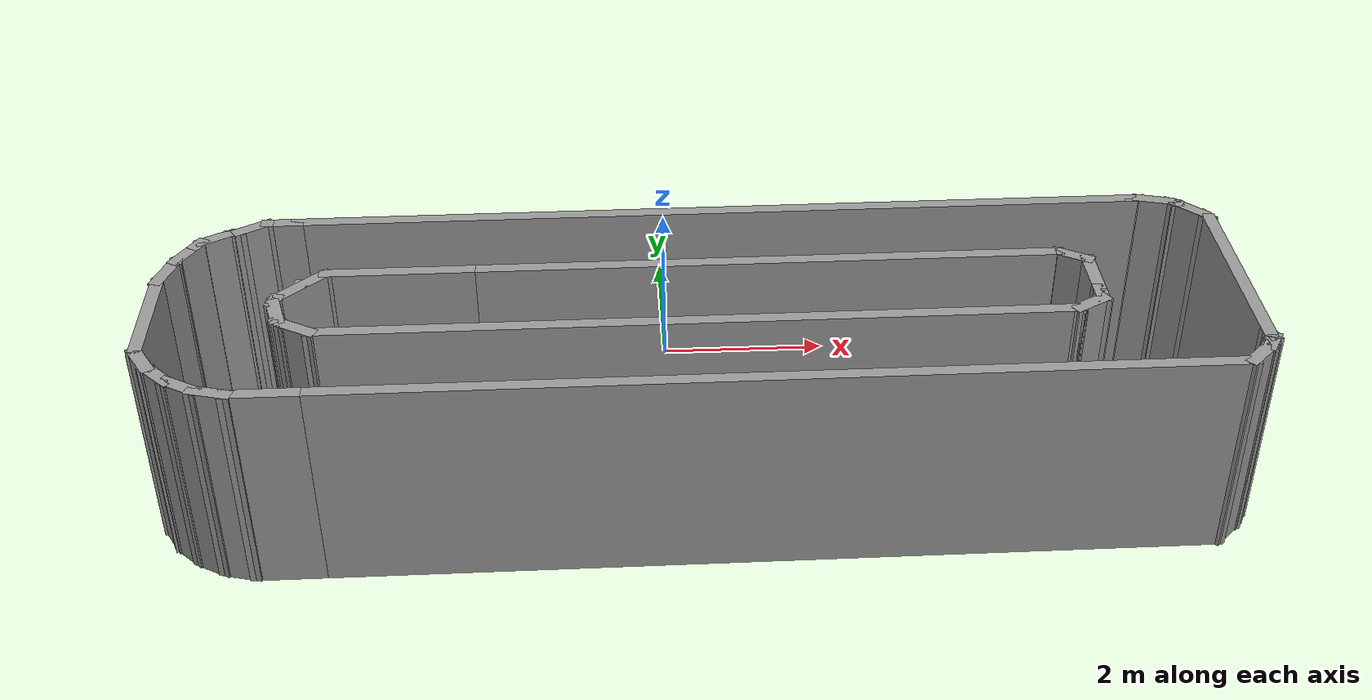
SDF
<?xml version='1.0'?>
<sdf version='1.7'>
  <model name='oval_track'>
    <pose>0.345579 -2.06112 0 0 -0 0</pose>
    <link name='Wall_0'>
      <collision name='Wall_0_Collision'>
        <geometry>
          <box>
            <size>1.5 0.15 2.5</size>
          </box>
        </geometry>
        <pose>0 0 1.25 0 -0 0</pose>
      </collision>
      <visual name='Wall_0_Visual'>
        <pose>0 0 1.25 0 -0 0</pose>
        <geometry>
          <box>
            <size>1.5 0.15 2.5</size>
          </box>
        </geometry>
        <material>
          <script>
            <uri>file://media/materials/scripts/gazebo.material</uri>
            <name>Gazebo/Grey</name>
          </script>
          <ambient>1 1 1 1</ambient>
        </material>
        <meta>
          <layer>0</layer>
        </meta>
      </visual>
      <pose>-6.05558 -0.463876 0 0 -0 -1.5708</pose>
    </link>
    <link name='Wall_10'>
      <collision name='Wall_10_Collision'>
        <geometry>
          <box>
            <size>0.5 0.15 2.5</size>
          </box>
        </geometry>
        <pose>0 0 1.25 0 -0 0</pose>
      </collision>
      <visual name='Wall_10_Visual'>
        <pose>0 0 1.25 0 -0 0</pose>
        <geometry>
          <box>
            <size>0.5 0.15 2.5</size>
          </box>
        </geometry>
        <material>
          <script>
            <uri>file://media/materials/scripts/gazebo.material</uri>
            <name>Gazebo/Grey</name>
          </script>
          <ambient>1 1 1 1</ambient>
        </material>
        <meta>
          <layer>0</layer>
        </meta>
      </visual>
      <pose>5.83183 -1.83132 0 0 -0 0.785398</pose>
    </link>
    <link name='Wall_11'>
      <collision name='Wall_11_Collision'>
        <geometry>
          <box>
            <size>0.15 0.15 2.5</size>
          </box>
        </geometry>
        <pose>0 0 1.25 0 -0 0</pose>
      </collision>
      <visual name='Wall_11_Visual'>
        <pose>0 0 1.25 0 -0 0</pose>
        <geometry>
          <box>
            <size>0.15 0.15 2.5</size>
          </box>
        </geometry>
        <material>
          <script>
            <uri>file://media/materials/scripts/gazebo.material</uri>
            <name>Gazebo/Grey</name>
          </script>
          <ambient>1 1 1 1</ambient>
        </material>
        <meta>
          <layer>0</layer>
        </meta>
      </visual>
      <pose>5.95558 -1.70757 0 0 -0 0</pose>
    </link>
    <link name='Wall_12'>
      <collision name='Wall_12_Collision'>
        <geometry>
          <box>
            <size>0.25 0.15 2.5</size>
          </box>
        </geometry>
        <pose>0 0 1.25 0 -0 0</pose>
      </collision>
      <visual name='Wall_12_Visual'>
        <pose>0 0 1.25 0 -0 0</pose>
        <geometry>
          <box>
            <size>0.25 0.15 2.5</size>
          </box>
        </geometry>
        <material>
          <script>
            <uri>file://media/materials/scripts/gazebo.material</uri>
            <name>Gazebo/Grey</name>
          </script>
          <ambient>1 1 1 1</ambient>
        </material>
        <meta>
          <layer>0</layer>
        </meta>
      </visual>
      <pose>5.98058 -1.66427 0 0 -0 1.0472</pose>
    </link>
    <link name='Wall_13'>
      <collision name='Wall_13_Collision'>
        <geometry>
          <box>
            <size>0.15 0.15 2.5</size>
          </box>
        </geometry>
        <pose>0 0 1.25 0 -0 0</pose>
      </collision>
      <visual name='Wall_13_Visual'>
        <pose>0 0 1.25 0 -0 0</pose>
        <geometry>
          <box>
            <size>0.15 0.15 2.5</size>
          </box>
        </geometry>
        <material>
          <script>
            <uri>file://media/materials/scripts/gazebo.material</uri>
            <name>Gazebo/Grey</name>
          </script>
          <ambient>1 1 1 1</ambient>
        </material>
        <meta>
          <layer>0</layer>
        </meta>
      </visual>
      <pose>6.00558 -1.62097 0 0 -0 0</pose>
    </link>
    <link name='Wall_14'>
      <collision name='Wall_14_Collision'>
        <geometry>
          <box>
            <size>0.25 0.15 2.5</size>
          </box>
        </geometry>
        <pose>0 0 1.25 0 -0 0</pose>
      </collision>
      <visual name='Wall_14_Visual'>
        <pose>0 0 1.25 0 -0 0</pose>
        <geometry>
          <box>
            <size>0.25 0.15 2.5</size>
          </box>
        </geometry>
        <material>
          <script>
            <uri>file://media/materials/scripts/gazebo.material</uri>
            <name>Gazebo/Grey</name>
          </script>
          <ambient>1 1 1 1</ambient>
        </material>
        <meta>
          <layer>0</layer>
        </meta>
      </visual>
      <pose>6.03058 -1.57767 0 0 -0 1.0472</pose>
    </link>
    <link name='Wall_15'>
      <collision name='Wall_15_Collision'>
        <geometry>
          <box>
            <size>0.25 0.15 2.5</size>
          </box>
        </geometry>
        <pose>0 0 1.25 0 -0 0</pose>
      </collision>
      <visual name='Wall_15_Visual'>
        <pose>0 0 1.25 0 -0 0</pose>
        <geometry>
          <box>
            <size>0.25 0.15 2.5</size>
          </box>
        </geometry>
        <material>
          <script>
            <uri>file://media/materials/scripts/gazebo.material</uri>
            <name>Gazebo/Grey</name>
          </script>
          <ambient>1 1 1 1</ambient>
        </material>
        <meta>
          <layer>0</layer>
        </meta>
      </visual>
      <pose>6.04264 -1.48607 0 0 -0 1.8326</pose>
    </link>
    <link name='Wall_16'>
      <collision name='Wall_16_Collision'>
        <geometry>
          <box>
            <size>2.5 0.15 2.5</size>
          </box>
        </geometry>
        <pose>0 0 1.25 0 -0 0</pose>
      </collision>
      <visual name='Wall_16_Visual'>
        <pose>0 0 1.25 0 -0 0</pose>
        <geometry>
          <box>
            <size>2.5 0.15 2.5</size>
          </box>
        </geometry>
        <material>
          <script>
            <uri>file://media/materials/scripts/gazebo.material</uri>
            <name>Gazebo/Grey</name>
          </script>
          <ambient>1 1 1 1</ambient>
        </material>
        <meta>
          <layer>0</layer>
        </meta>
      </visual>
      <pose>6.0297 -0.262774 0 0 -0 1.5708</pose>
    </link>
    <link name='Wall_17'>
      <collision name='Wall_17_Collision'>
        <geometry>
          <box>
            <size>0.25 0.15 2.5</size>
          </box>
        </geometry>
        <pose>0 0 1.25 0 -0 0</pose>
      </collision>
      <visual name='Wall_17_Visual'>
        <pose>0 0 1.25 0 -0 0</pose>
        <geometry>
          <box>
            <size>0.25 0.15 2.5</size>
          </box>
        </geometry>
        <material>
          <script>
            <uri>file://media/materials/scripts/gazebo.material</uri>
            <name>Gazebo/Grey</name>
          </script>
          <ambient>1 1 1 1</ambient>
        </material>
        <meta>
          <layer>0</layer>
        </meta>
      </visual>
      <pose>6.0047 0.955528 0 0 -0 2.0944</pose>
    </link>
    <link name='Wall_18'>
      <collision name='Wall_18_Collision'>
        <geometry>
          <box>
            <size>0.5 0.15 2.5</size>
          </box>
        </geometry>
        <pose>0 0 1.25 0 -0 0</pose>
      </collision>
      <visual name='Wall_18_Visual'>
        <pose>0 0 1.25 0 -0 0</pose>
        <geometry>
          <box>
            <size>0.5 0.15 2.5</size>
          </box>
        </geometry>
        <material>
          <script>
            <uri>file://media/materials/scripts/gazebo.material</uri>
            <name>Gazebo/Grey</name>
          </script>
          <ambient>1 1 1 1</ambient>
        </material>
        <meta>
          <layer>0</layer>
        </meta>
      </visual>
      <pose>5.85595 1.12257 0 0 -0 2.35619</pose>
    </link>
    <link name='Wall_19'>
      <collision name='Wall_19_Collision'>
        <geometry>
          <box>
            <size>0.15 0.15 2.5</size>
          </box>
        </geometry>
        <pose>0 0 1.25 0 -0 0</pose>
      </collision>
      <visual name='Wall_19_Visual'>
        <pose>0 0 1.25 0 -0 0</pose>
        <geometry>
          <box>
            <size>0.15 0.15 2.5</size>
          </box>
        </geometry>
        <material>
          <script>
            <uri>file://media/materials/scripts/gazebo.material</uri>
            <name>Gazebo/Grey</name>
          </script>
          <ambient>1 1 1 1</ambient>
        </material>
        <meta>
          <layer>0</layer>
        </meta>
      </visual>
      <pose>5.73221 1.24632 0 0 -0 0</pose>
    </link>
    <link name='Wall_20'>
      <collision name='Wall_20_Collision'>
        <geometry>
          <box>
            <size>0.25 0.15 2.5</size>
          </box>
        </geometry>
        <pose>0 0 1.25 0 -0 0</pose>
      </collision>
      <visual name='Wall_20_Visual'>
        <pose>0 0 1.25 0 -0 0</pose>
        <geometry>
          <box>
            <size>0.25 0.15 2.5</size>
          </box>
        </geometry>
        <material>
          <script>
            <uri>file://media/materials/scripts/gazebo.material</uri>
            <name>Gazebo/Grey</name>
          </script>
          <ambient>1 1 1 1</ambient>
        </material>
        <meta>
          <layer>0</layer>
        </meta>
      </visual>
      <pose>5.68891 1.27132 0 0 -0 2.61799</pose>
    </link>
    <link name='Wall_21'>
      <collision name='Wall_21_Collision'>
        <geometry>
          <box>
            <size>0.5 0.15 2.5</size>
          </box>
        </geometry>
        <pose>0 0 1.25 0 -0 0</pose>
      </collision>
      <visual name='Wall_21_Visual'>
        <pose>0 0 1.25 0 -0 0</pose>
        <geometry>
          <box>
            <size>0.5 0.15 2.5</size>
          </box>
        </geometry>
        <material>
          <script>
            <uri>file://media/materials/scripts/gazebo.material</uri>
            <name>Gazebo/Grey</name>
          </script>
          <ambient>1 1 1 1</ambient>
        </material>
        <meta>
          <layer>0</layer>
        </meta>
      </visual>
      <pose>5.47657 1.34161 0 0 -0 2.87979</pose>
    </link>
    <link name='Wall_22'>
      <collision name='Wall_22_Collision'>
        <geometry>
          <box>
            <size>0.25 0.15 2.5</size>
          </box>
        </geometry>
        <pose>0 0 1.25 0 -0 0</pose>
      </collision>
      <visual name='Wall_22_Visual'>
        <pose>0 0 1.25 0 -0 0</pose>
        <geometry>
          <box>
            <size>0.25 0.15 2.5</size>
          </box>
        </geometry>
        <material>
          <script>
            <uri>file://media/materials/scripts/gazebo.material</uri>
            <name>Gazebo/Grey</name>
          </script>
          <ambient>1 1 1 1</ambient>
        </material>
        <meta>
          <layer>0</layer>
        </meta>
      </visual>
      <pose>5.25753 1.3869 0 0 -0 3.14159</pose>
    </link>
    <link name='Wall_23'>
      <collision name='Wall_23_Collision'>
        <geometry>
          <box>
            <size>10 0.15 2.5</size>
          </box>
        </geometry>
        <pose>0 0 1.25 0 -0 0</pose>
      </collision>
      <visual name='Wall_23_Visual'>
        <pose>0 0 1.25 0 -0 0</pose>
        <geometry>
          <box>
            <size>10 0.15 2.5</size>
          </box>
        </geometry>
        <material>
          <script>
            <uri>file://media/materials/scripts/gazebo.material</uri>
            <name>Gazebo/Grey</name>
          </script>
          <ambient>1 1 1 1</ambient>
        </material>
        <meta>
          <layer>0</layer>
        </meta>
      </visual>
      <pose>0.282533 1.3869 0 0 -0 3.14159</pose>
    </link>
    <link name='Wall_24'>
      <collision name='Wall_24_Collision'>
        <geometry>
          <box>
            <size>0.5 0.15 2.5</size>
          </box>
        </geometry>
        <pose>0 0 1.25 0 -0 0</pose>
      </collision>
      <visual name='Wall_24_Visual'>
        <pose>0 0 1.25 0 -0 0</pose>
        <geometry>
          <box>
            <size>0.5 0.15 2.5</size>
          </box>
        </geometry>
        <material>
          <script>
            <uri>file://media/materials/scripts/gazebo.material</uri>
            <name>Gazebo/Grey</name>
          </script>
          <ambient>1 1 1 1</ambient>
        </material>
        <meta>
          <layer>0</layer>
        </meta>
      </visual>
      <pose>-4.81747 1.3869 0 0 -0 3.14159</pose>
    </link>
    <link name='Wall_25'>
      <collision name='Wall_25_Collision'>
        <geometry>
          <box>
            <size>0.15 0.15 2.5</size>
          </box>
        </geometry>
        <pose>0 0 1.25 0 -0 0</pose>
      </collision>
      <visual name='Wall_25_Visual'>
        <pose>0 0 1.25 0 -0 0</pose>
        <geometry>
          <box>
            <size>0.15 0.15 2.5</size>
          </box>
        </geometry>
        <material>
          <script>
            <uri>file://media/materials/scripts/gazebo.material</uri>
            <name>Gazebo/Grey</name>
          </script>
          <ambient>1 1 1 1</ambient>
        </material>
        <meta>
          <layer>0</layer>
        </meta>
      </visual>
      <pose>-4.99247 1.3869 0 0 -0 0</pose>
    </link>
    <link name='Wall_26'>
      <collision name='Wall_26_Collision'>
        <geometry>
          <box>
            <size>0.5 0.15 2.5</size>
          </box>
        </geometry>
        <pose>0 0 1.25 0 -0 0</pose>
      </collision>
      <visual name='Wall_26_Visual'>
        <pose>0 0 1.25 0 -0 0</pose>
        <geometry>
          <box>
            <size>0.5 0.15 2.5</size>
          </box>
        </geometry>
        <material>
          <script>
            <uri>file://media/materials/scripts/gazebo.material</uri>
            <name>Gazebo/Grey</name>
          </script>
          <ambient>1 1 1 1</ambient>
        </material>
        <meta>
          <layer>0</layer>
        </meta>
      </visual>
      <pose>-5.14402 1.2994 0 0 -0 -2.61799</pose>
    </link>
    <link name='Wall_27'>
      <collision name='Wall_27_Collision'>
        <geometry>
          <box>
            <size>0.25 0.15 2.5</size>
          </box>
        </geometry>
        <pose>0 0 1.25 0 -0 0</pose>
      </collision>
      <visual name='Wall_27_Visual'>
        <pose>0 0 1.25 0 -0 0</pose>
        <geometry>
          <box>
            <size>0.25 0.15 2.5</size>
          </box>
        </geometry>
        <material>
          <script>
            <uri>file://media/materials/scripts/gazebo.material</uri>
            <name>Gazebo/Grey</name>
          </script>
          <ambient>1 1 1 1</ambient>
        </material>
        <meta>
          <layer>0</layer>
        </meta>
      </visual>
      <pose>-5.34387 1.19896 0 0 -0 -2.87979</pose>
    </link>
    <link name='Wall_28'>
      <collision name='Wall_28_Collision'>
        <geometry>
          <box>
            <size>0.5 0.15 2.5</size>
          </box>
        </geometry>
        <pose>0 0 1.25 0 -0 0</pose>
      </collision>
      <visual name='Wall_28_Visual'>
        <pose>0 0 1.25 0 -0 0</pose>
        <geometry>
          <box>
            <size>0.5 0.15 2.5</size>
          </box>
        </geometry>
        <material>
          <script>
            <uri>file://media/materials/scripts/gazebo.material</uri>
            <name>Gazebo/Grey</name>
          </script>
          <ambient>1 1 1 1</ambient>
        </material>
        <meta>
          <layer>0</layer>
        </meta>
      </visual>
      <pose>-5.54372 1.09852 0 0 -0 -2.61799</pose>
    </link>
    <link name='Wall_29'>
      <collision name='Wall_29_Collision'>
        <geometry>
          <box>
            <size>0.25 0.15 2.5</size>
          </box>
        </geometry>
        <pose>0 0 1.25 0 -0 0</pose>
      </collision>
      <visual name='Wall_29_Visual'>
        <pose>0 0 1.25 0 -0 0</pose>
        <geometry>
          <box>
            <size>0.25 0.15 2.5</size>
          </box>
        </geometry>
        <material>
          <script>
            <uri>file://media/materials/scripts/gazebo.material</uri>
            <name>Gazebo/Grey</name>
          </script>
          <ambient>1 1 1 1</ambient>
        </material>
        <meta>
          <layer>0</layer>
        </meta>
      </visual>
      <pose>-5.72028 0.96772 0 0 -0 -2.0944</pose>
    </link>
    <link name='Wall_3'>
      <collision name='Wall_3_Collision'>
        <geometry>
          <box>
            <size>0.5 0.15 2.5</size>
          </box>
        </geometry>
        <pose>0 0 1.25 0 -0 0</pose>
      </collision>
      <visual name='Wall_3_Visual'>
        <pose>0 0 1.25 0 -0 0</pose>
        <geometry>
          <box>
            <size>0.5 0.15 2.5</size>
          </box>
        </geometry>
        <material>
          <script>
            <uri>file://media/materials/scripts/gazebo.material</uri>
            <name>Gazebo/Grey</name>
          </script>
          <ambient>1 1 1 1</ambient>
        </material>
        <meta>
          <layer>0</layer>
        </meta>
      </visual>
      <pose>-5.96808 -1.29043 0 0 -0 -1.0472</pose>
    </link>
    <link name='Wall_30'>
      <collision name='Wall_30_Collision'>
        <geometry>
          <box>
            <size>0.5 0.15 2.5</size>
          </box>
        </geometry>
        <pose>0 0 1.25 0 -0 0</pose>
      </collision>
      <visual name='Wall_30_Visual'>
        <pose>0 0 1.25 0 -0 0</pose>
        <geometry>
          <box>
            <size>0.5 0.15 2.5</size>
          </box>
        </geometry>
        <material>
          <script>
            <uri>file://media/materials/scripts/gazebo.material</uri>
            <name>Gazebo/Grey</name>
          </script>
          <ambient>1 1 1 1</ambient>
        </material>
        <meta>
          <layer>0</layer>
        </meta>
      </visual>
      <pose>-5.83278 0.772864 0 0 -0 -2.0944</pose>
    </link>
    <link name='Wall_31'>
      <collision name='Wall_31_Collision'>
        <geometry>
          <box>
            <size>0.15 0.15 2.5</size>
          </box>
        </geometry>
        <pose>0 0 1.25 0 -0 0</pose>
      </collision>
      <visual name='Wall_31_Visual'>
        <pose>0 0 1.25 0 -0 0</pose>
        <geometry>
          <box>
            <size>0.15 0.15 2.5</size>
          </box>
        </geometry>
        <material>
          <script>
            <uri>file://media/materials/scripts/gazebo.material</uri>
            <name>Gazebo/Grey</name>
          </script>
          <ambient>1 1 1 1</ambient>
        </material>
        <meta>
          <layer>0</layer>
        </meta>
      </visual>
      <pose>-5.92028 0.62131 0 0 -0 0</pose>
    </link>
    <link name='Wall_32'>
      <collision name='Wall_32_Collision'>
        <geometry>
          <box>
            <size>0.581924 0.15 2.5</size>
          </box>
        </geometry>
        <pose>0 0 1.25 0 -0 0</pose>
      </collision>
      <visual name='Wall_32_Visual'>
        <pose>0 0 1.25 0 -0 0</pose>
        <geometry>
          <box>
            <size>0.581924 0.15 2.5</size>
          </box>
        </geometry>
        <material>
          <script>
            <uri>file://media/materials/scripts/gazebo.material</uri>
            <name>Gazebo/Grey</name>
          </script>
          <ambient>1 1 1 1</ambient>
        </material>
        <meta>
          <layer>0</layer>
        </meta>
      </visual>
      <pose>-5.98793 0.416217 0 0 -0 -1.88941</pose>
    </link>
    <link name='Wall_35'>
      <collision name='Wall_35_Collision'>
        <geometry>
          <box>
            <size>0.15 0.15 2.5</size>
          </box>
        </geometry>
        <pose>0 0 1.25 0 -0 0</pose>
      </collision>
      <visual name='Wall_35_Visual'>
        <pose>0 0 1.25 0 -0 0</pose>
        <geometry>
          <box>
            <size>0.15 0.15 2.5</size>
          </box>
        </geometry>
        <material>
          <script>
            <uri>file://media/materials/scripts/gazebo.material</uri>
            <name>Gazebo/Grey</name>
          </script>
          <ambient>1 1 1 1</ambient>
        </material>
        <meta>
          <layer>0</layer>
        </meta>
      </visual>
      <pose>-4.44558 0.081124 0 0 -0 0</pose>
    </link>
    <link name='Wall_4'>
      <collision name='Wall_4_Collision'>
        <geometry>
          <box>
            <size>0.15 0.15 2.5</size>
          </box>
        </geometry>
        <pose>0 0 1.25 0 -0 0</pose>
      </collision>
      <visual name='Wall_4_Visual'>
        <pose>0 0 1.25 0 -0 0</pose>
        <geometry>
          <box>
            <size>0.15 0.15 2.5</size>
          </box>
        </geometry>
        <material>
          <script>
            <uri>file://media/materials/scripts/gazebo.material</uri>
            <name>Gazebo/Grey</name>
          </script>
          <ambient>1 1 1 1</ambient>
        </material>
        <meta>
          <layer>0</layer>
        </meta>
      </visual>
      <pose>-5.88058 -1.44199 0 0 -0 0</pose>
    </link>
    <link name='Wall_40'>
      <collision name='Wall_40_Collision'>
        <geometry>
          <box>
            <size>0.25 0.15 2.5</size>
          </box>
        </geometry>
        <pose>0 0 1.25 0 -0 0</pose>
      </collision>
      <visual name='Wall_40_Visual'>
        <pose>0 0 1.25 0 -0 0</pose>
        <geometry>
          <box>
            <size>0.25 0.15 2.5</size>
          </box>
        </geometry>
        <material>
          <script>
            <uri>file://media/materials/scripts/gazebo.material</uri>
            <name>Gazebo/Grey</name>
          </script>
          <ambient>1 1 1 1</ambient>
        </material>
        <meta>
          <layer>0</layer>
        </meta>
      </visual>
      <pose>-4.7017 -0.24696 0 0 -0 -1.8326</pose>
    </link>
    <link name='Wall_41'>
      <collision name='Wall_41_Collision'>
        <geometry>
          <box>
            <size>0.5 0.15 2.5</size>
          </box>
        </geometry>
        <pose>0 0 1.25 0 -0 0</pose>
      </collision>
      <visual name='Wall_41_Visual'>
        <pose>0 0 1.25 0 -0 0</pose>
        <geometry>
          <box>
            <size>0.5 0.15 2.5</size>
          </box>
        </geometry>
        <material>
          <script>
            <uri>file://media/materials/scripts/gazebo.material</uri>
            <name>Gazebo/Grey</name>
          </script>
          <ambient>1 1 1 1</ambient>
        </material>
        <meta>
          <layer>0</layer>
        </meta>
      </visual>
      <pose>-4.66935 -0.464293 0 0 -0 -1.309</pose>
    </link>
    <link name='Wall_42'>
      <collision name='Wall_42_Collision'>
        <geometry>
          <box>
            <size>0.15 0.15 2.5</size>
          </box>
        </geometry>
        <pose>0 0 1.25 0 -0 0</pose>
      </collision>
      <visual name='Wall_42_Visual'>
        <pose>0 0 1.25 0 -0 0</pose>
        <geometry>
          <box>
            <size>0.15 0.15 2.5</size>
          </box>
        </geometry>
        <material>
          <script>
            <uri>file://media/materials/scripts/gazebo.material</uri>
            <name>Gazebo/Grey</name>
          </script>
          <ambient>1 1 1 1</ambient>
        </material>
        <meta>
          <layer>0</layer>
        </meta>
      </visual>
      <pose>-4.62406 -0.63333 0 0 -0 0</pose>
    </link>
    <link name='Wall_43'>
      <collision name='Wall_43_Collision'>
        <geometry>
          <box>
            <size>0.15 0.15 2.5</size>
          </box>
        </geometry>
        <pose>0 0 1.25 0 -0 0</pose>
      </collision>
      <visual name='Wall_43_Visual'>
        <pose>0 0 1.25 0 -0 0</pose>
        <geometry>
          <box>
            <size>0.15 0.15 2.5</size>
          </box>
        </geometry>
        <material>
          <script>
            <uri>file://media/materials/scripts/gazebo.material</uri>
            <name>Gazebo/Grey</name>
          </script>
          <ambient>1 1 1 1</ambient>
        </material>
        <meta>
          <layer>0</layer>
        </meta>
      </visual>
      <pose>-4.62406 -0.63333 0 0 -0 0</pose>
    </link>
    <link name='Wall_44'>
      <collision name='Wall_44_Collision'>
        <geometry>
          <box>
            <size>0.25 0.15 2.5</size>
          </box>
        </geometry>
        <pose>0 0 1.25 0 -0 0</pose>
      </collision>
      <visual name='Wall_44_Visual'>
        <pose>0 0 1.25 0 -0 0</pose>
        <geometry>
          <box>
            <size>0.25 0.15 2.5</size>
          </box>
        </geometry>
        <material>
          <script>
            <uri>file://media/materials/scripts/gazebo.material</uri>
            <name>Gazebo/Grey</name>
          </script>
          <ambient>1 1 1 1</ambient>
        </material>
        <meta>
          <layer>0</layer>
        </meta>
      </visual>
      <pose>-4.5887 -0.668685 0 0 -0 -0.785398</pose>
    </link>
    <link name='Wall_45'>
      <collision name='Wall_45_Collision'>
        <geometry>
          <box>
            <size>0.5 0.15 2.5</size>
          </box>
        </geometry>
        <pose>0 0 1.25 0 -0 0</pose>
      </collision>
      <visual name='Wall_45_Visual'>
        <pose>0 0 1.25 0 -0 0</pose>
        <geometry>
          <box>
            <size>0.5 0.15 2.5</size>
          </box>
        </geometry>
        <material>
          <script>
            <uri>file://media/materials/scripts/gazebo.material</uri>
            <name>Gazebo/Grey</name>
          </script>
          <ambient>1 1 1 1</ambient>
        </material>
        <meta>
          <layer>0</layer>
        </meta>
      </visual>
      <pose>-4.40179 -0.791541 0 0 -0 -0.523599</pose>
    </link>
    <link name='Wall_46'>
      <collision name='Wall_46_Collision'>
        <geometry>
          <box>
            <size>8.5 0.15 2.5</size>
          </box>
        </geometry>
        <pose>0 0 1.25 0 -0 0</pose>
      </collision>
      <visual name='Wall_46_Visual'>
        <pose>0 0 1.25 0 -0 0</pose>
        <geometry>
          <box>
            <size>8.5 0.15 2.5</size>
          </box>
        </geometry>
        <material>
          <script>
            <uri>file://media/materials/scripts/gazebo.material</uri>
            <name>Gazebo/Grey</name>
          </script>
          <ambient>1 1 1 1</ambient>
        </material>
        <meta>
          <layer>0</layer>
        </meta>
      </visual>
      <pose>-0.07524 -0.879041 0 0 -0 0</pose>
    </link>
    <link name='Wall_47'>
      <collision name='Wall_47_Collision'>
        <geometry>
          <box>
            <size>0.15 0.15 2.5</size>
          </box>
        </geometry>
        <pose>0 0 1.25 0 -0 0</pose>
      </collision>
      <visual name='Wall_47_Visual'>
        <pose>0 0 1.25 0 -0 0</pose>
        <geometry>
          <box>
            <size>0.15 0.15 2.5</size>
          </box>
        </geometry>
        <material>
          <script>
            <uri>file://media/materials/scripts/gazebo.material</uri>
            <name>Gazebo/Grey</name>
          </script>
          <ambient>1 1 1 1</ambient>
        </material>
        <meta>
          <layer>0</layer>
        </meta>
      </visual>
      <pose>4.09976 -0.879041 0 0 -0 0</pose>
    </link>
    <link name='Wall_48'>
      <collision name='Wall_48_Collision'>
        <geometry>
          <box>
            <size>0.5 0.15 2.5</size>
          </box>
        </geometry>
        <pose>0 0 1.25 0 -0 0</pose>
      </collision>
      <visual name='Wall_48_Visual'>
        <pose>0 0 1.25 0 -0 0</pose>
        <geometry>
          <box>
            <size>0.5 0.15 2.5</size>
          </box>
        </geometry>
        <material>
          <script>
            <uri>file://media/materials/scripts/gazebo.material</uri>
            <name>Gazebo/Grey</name>
          </script>
          <ambient>1 1 1 1</ambient>
        </material>
        <meta>
          <layer>0</layer>
        </meta>
      </visual>
      <pose>4.25131 -0.791541 0 0 -0 0.523599</pose>
    </link>
    <link name='Wall_49'>
      <collision name='Wall_49_Collision'>
        <geometry>
          <box>
            <size>0.15 0.15 2.5</size>
          </box>
        </geometry>
        <pose>0 0 1.25 0 -0 0</pose>
      </collision>
      <visual name='Wall_49_Visual'>
        <pose>0 0 1.25 0 -0 0</pose>
        <geometry>
          <box>
            <size>0.15 0.15 2.5</size>
          </box>
        </geometry>
        <material>
          <script>
            <uri>file://media/materials/scripts/gazebo.material</uri>
            <name>Gazebo/Grey</name>
          </script>
          <ambient>1 1 1 1</ambient>
        </material>
        <meta>
          <layer>0</layer>
        </meta>
      </visual>
      <pose>4.40287 -0.704041 0 0 -0 0</pose>
    </link>
    <link name='Wall_5'>
      <collision name='Wall_5_Collision'>
        <geometry>
          <box>
            <size>0.5 0.15 2.5</size>
          </box>
        </geometry>
        <pose>0 0 1.25 0 -0 0</pose>
      </collision>
      <visual name='Wall_5_Visual'>
        <pose>0 0 1.25 0 -0 0</pose>
        <geometry>
          <box>
            <size>0.5 0.15 2.5</size>
          </box>
        </geometry>
        <material>
          <script>
            <uri>file://media/materials/scripts/gazebo.material</uri>
            <name>Gazebo/Grey</name>
          </script>
          <ambient>1 1 1 1</ambient>
        </material>
        <meta>
          <layer>0</layer>
        </meta>
      </visual>
      <pose>-5.75683 -1.56573 0 0 -0 -0.785398</pose>
    </link>
    <link name='Wall_50'>
      <collision name='Wall_50_Collision'>
        <geometry>
          <box>
            <size>0.25 0.15 2.5</size>
          </box>
        </geometry>
        <pose>0 0 1.25 0 -0 0</pose>
      </collision>
      <visual name='Wall_50_Visual'>
        <pose>0 0 1.25 0 -0 0</pose>
        <geometry>
          <box>
            <size>0.25 0.15 2.5</size>
          </box>
        </geometry>
        <material>
          <script>
            <uri>file://media/materials/scripts/gazebo.material</uri>
            <name>Gazebo/Grey</name>
          </script>
          <ambient>1 1 1 1</ambient>
        </material>
        <meta>
          <layer>0</layer>
        </meta>
      </visual>
      <pose>4.40287 -0.654041 0 0 -0 1.5708</pose>
    </link>
    <link name='Wall_51'>
      <collision name='Wall_51_Collision'>
        <geometry>
          <box>
            <size>0.25 0.15 2.5</size>
          </box>
        </geometry>
        <pose>0 0 1.25 0 -0 0</pose>
      </collision>
      <visual name='Wall_51_Visual'>
        <pose>0 0 1.25 0 -0 0</pose>
        <geometry>
          <box>
            <size>0.25 0.15 2.5</size>
          </box>
        </geometry>
        <material>
          <script>
            <uri>file://media/materials/scripts/gazebo.material</uri>
            <name>Gazebo/Grey</name>
          </script>
          <ambient>1 1 1 1</ambient>
        </material>
        <meta>
          <layer>0</layer>
        </meta>
      </visual>
      <pose>4.40287 -0.554041 0 0 -0 1.5708</pose>
    </link>
    <link name='Wall_52'>
      <collision name='Wall_52_Collision'>
        <geometry>
          <box>
            <size>0.75 0.15 2.5</size>
          </box>
        </geometry>
        <pose>0 0 1.25 0 -0 0</pose>
      </collision>
      <visual name='Wall_52_Visual'>
        <pose>0 0 1.25 0 -0 0</pose>
        <geometry>
          <box>
            <size>0.75 0.15 2.5</size>
          </box>
        </geometry>
        <material>
          <script>
            <uri>file://media/materials/scripts/gazebo.material</uri>
            <name>Gazebo/Grey</name>
          </script>
          <ambient>1 1 1 1</ambient>
        </material>
        <meta>
          <layer>0</layer>
        </meta>
      </visual>
      <pose>4.40287 -0.204041 0 0 -0 1.5708</pose>
    </link>
    <link name='Wall_53'>
      <collision name='Wall_53_Collision'>
        <geometry>
          <box>
            <size>0.15 0.15 2.5</size>
          </box>
        </geometry>
        <pose>0 0 1.25 0 -0 0</pose>
      </collision>
      <visual name='Wall_53_Visual'>
        <pose>0 0 1.25 0 -0 0</pose>
        <geometry>
          <box>
            <size>0.15 0.15 2.5</size>
          </box>
        </geometry>
        <material>
          <script>
            <uri>file://media/materials/scripts/gazebo.material</uri>
            <name>Gazebo/Grey</name>
          </script>
          <ambient>1 1 1 1</ambient>
        </material>
        <meta>
          <layer>0</layer>
        </meta>
      </visual>
      <pose>4.40287 0.095959 0 0 -0 0</pose>
    </link>
    <link name='Wall_54'>
      <collision name='Wall_54_Collision'>
        <geometry>
          <box>
            <size>0.5 0.15 2.5</size>
          </box>
        </geometry>
        <pose>0 0 1.25 0 -0 0</pose>
      </collision>
      <visual name='Wall_54_Visual'>
        <pose>0 0 1.25 0 -0 0</pose>
        <geometry>
          <box>
            <size>0.5 0.15 2.5</size>
          </box>
        </geometry>
        <material>
          <script>
            <uri>file://media/materials/scripts/gazebo.material</uri>
            <name>Gazebo/Grey</name>
          </script>
          <ambient>1 1 1 1</ambient>
        </material>
        <meta>
          <layer>0</layer>
        </meta>
      </visual>
      <pose>4.25131 0.183459 0 0 -0 2.61799</pose>
    </link>
    <link name='Wall_55'>
      <collision name='Wall_55_Collision'>
        <geometry>
          <box>
            <size>0.25 0.15 2.5</size>
          </box>
        </geometry>
        <pose>0 0 1.25 0 -0 0</pose>
      </collision>
      <visual name='Wall_55_Visual'>
        <pose>0 0 1.25 0 -0 0</pose>
        <geometry>
          <box>
            <size>0.25 0.15 2.5</size>
          </box>
        </geometry>
        <material>
          <script>
            <uri>file://media/materials/scripts/gazebo.material</uri>
            <name>Gazebo/Grey</name>
          </script>
          <ambient>1 1 1 1</ambient>
        </material>
        <meta>
          <layer>0</layer>
        </meta>
      </visual>
      <pose>4.04976 0.270959 0 0 -0 3.14159</pose>
    </link>
    <link name='Wall_56'>
      <collision name='Wall_56_Collision'>
        <geometry>
          <box>
            <size>6.75 0.15 2.5</size>
          </box>
        </geometry>
        <pose>0 0 1.25 0 -0 0</pose>
      </collision>
      <visual name='Wall_56_Visual'>
        <pose>0 0 1.25 0 -0 0</pose>
        <geometry>
          <box>
            <size>6.75 0.15 2.5</size>
          </box>
        </geometry>
        <material>
          <script>
            <uri>file://media/materials/scripts/gazebo.material</uri>
            <name>Gazebo/Grey</name>
          </script>
          <ambient>1 1 1 1</ambient>
        </material>
        <meta>
          <layer>0</layer>
        </meta>
      </visual>
      <pose>0.69976 0.270959 0 0 -0 3.14159</pose>
    </link>
    <link name='Wall_58'>
      <collision name='Wall_58_Collision'>
        <geometry>
          <box>
            <size>1.75 0.15 2.5</size>
          </box>
        </geometry>
        <pose>0 0 1.25 0 -0 0</pose>
      </collision>
      <visual name='Wall_58_Visual'>
        <pose>0 0 1.25 0 -0 0</pose>
        <geometry>
          <box>
            <size>1.75 0.15 2.5</size>
          </box>
        </geometry>
        <material>
          <script>
            <uri>file://media/materials/scripts/gazebo.material</uri>
            <name>Gazebo/Grey</name>
          </script>
          <ambient>1 1 1 1</ambient>
        </material>
        <meta>
          <layer>0</layer>
        </meta>
      </visual>
      <pose>-3.40024 0.270959 0 0 -0 3.14159</pose>
    </link>
    <link name='Wall_59'>
      <collision name='Wall_59_Collision'>
        <geometry>
          <box>
            <size>0.15 0.15 2.5</size>
          </box>
        </geometry>
        <pose>0 0 1.25 0 -0 0</pose>
      </collision>
      <visual name='Wall_59_Visual'>
        <pose>0 0 1.25 0 -0 0</pose>
        <geometry>
          <box>
            <size>0.15 0.15 2.5</size>
          </box>
        </geometry>
        <material>
          <script>
            <uri>file://media/materials/scripts/gazebo.material</uri>
            <name>Gazebo/Grey</name>
          </script>
          <ambient>1 1 1 1</ambient>
        </material>
        <meta>
          <layer>0</layer>
        </meta>
      </visual>
      <pose>-4.20024 0.270959 0 0 -0 0</pose>
    </link>
    <link name='Wall_6'>
      <collision name='Wall_6_Collision'>
        <geometry>
          <box>
            <size>0.5 0.15 2.5</size>
          </box>
        </geometry>
        <pose>0 0 1.25 0 -0 0</pose>
      </collision>
      <visual name='Wall_6_Visual'>
        <pose>0 0 1.25 0 -0 0</pose>
        <geometry>
          <box>
            <size>0.5 0.15 2.5</size>
          </box>
        </geometry>
        <material>
          <script>
            <uri>file://media/materials/scripts/gazebo.material</uri>
            <name>Gazebo/Grey</name>
          </script>
          <ambient>1 1 1 1</ambient>
        </material>
        <meta>
          <layer>0</layer>
        </meta>
      </visual>
      <pose>-5.48154 -1.77697 0 0 -0 -0.523599</pose>
    </link>
    <link name='Wall_60'>
      <collision name='Wall_60_Collision'>
        <geometry>
          <box>
            <size>0.827644 0.15 2.5</size>
          </box>
        </geometry>
        <pose>0 0 1.25 0 -0 0</pose>
      </collision>
      <visual name='Wall_60_Visual'>
        <pose>0 0 1.25 0 -0 0</pose>
        <geometry>
          <box>
            <size>0.827644 0.15 2.5</size>
          </box>
        </geometry>
        <material>
          <script>
            <uri>file://media/materials/scripts/gazebo.material</uri>
            <name>Gazebo/Grey</name>
          </script>
          <ambient>1 1 1 1</ambient>
        </material>
        <meta>
          <layer>0</layer>
        </meta>
      </visual>
      <pose>-4.4445 0.036148 0 0 -0 -2.37592</pose>
    </link>
    <link name='Wall_7'>
      <collision name='Wall_7_Collision'>
        <geometry>
          <box>
            <size>0.5 0.15 2.5</size>
          </box>
        </geometry>
        <pose>0 0 1.25 0 -0 0</pose>
      </collision>
      <visual name='Wall_7_Visual'>
        <pose>0 0 1.25 0 -0 0</pose>
        <geometry>
          <box>
            <size>0.5 0.15 2.5</size>
          </box>
        </geometry>
        <material>
          <script>
            <uri>file://media/materials/scripts/gazebo.material</uri>
            <name>Gazebo/Grey</name>
          </script>
          <ambient>1 1 1 1</ambient>
        </material>
        <meta>
          <layer>0</layer>
        </meta>
      </visual>
      <pose>-5.16095 -1.90976 0 0 -0 -0.261799</pose>
    </link>
    <link name='Wall_8'>
      <collision name='Wall_8_Collision'>
        <geometry>
          <box>
            <size>1 0.15 2.5</size>
          </box>
        </geometry>
        <pose>0 0 1.25 0 -0 0</pose>
      </collision>
      <visual name='Wall_8_Visual'>
        <pose>0 0 1.25 0 -0 0</pose>
        <geometry>
          <box>
            <size>1 0.15 2.5</size>
          </box>
        </geometry>
        <material>
          <script>
            <uri>file://media/materials/scripts/gazebo.material</uri>
            <name>Gazebo/Grey</name>
          </script>
          <ambient>1 1 1 1</ambient>
        </material>
        <meta>
          <layer>0</layer>
        </meta>
      </visual>
      <pose>-4.56691 -1.95506 0 0 -0 0</pose>
    </link>
    <link name='Wall_9'>
      <collision name='Wall_9_Collision'>
        <geometry>
          <box>
            <size>10 0.15 2.5</size>
          </box>
        </geometry>
        <pose>0 0 1.25 0 -0 0</pose>
      </collision>
      <visual name='Wall_9_Visual'>
        <pose>0 0 1.25 0 -0 0</pose>
        <geometry>
          <box>
            <size>10 0.15 2.5</size>
          </box>
        </geometry>
        <material>
          <script>
            <uri>file://media/materials/scripts/gazebo.material</uri>
            <name>Gazebo/Grey</name>
          </script>
          <ambient>1 1 1 1</ambient>
        </material>
        <meta>
          <layer>0</layer>
        </meta>
      </visual>
      <pose>0.783091 -1.95506 0 0 -0 0</pose>
    </link>
    <static>1</static>
  </model>
</sdf>
